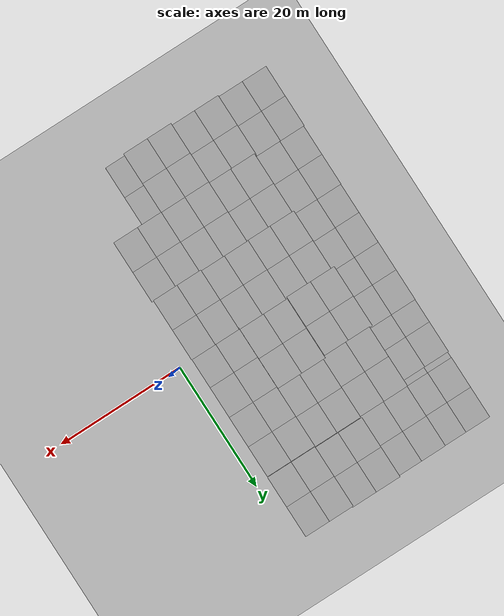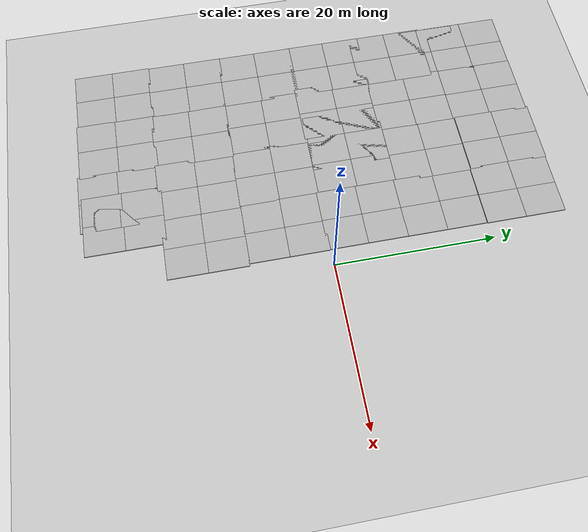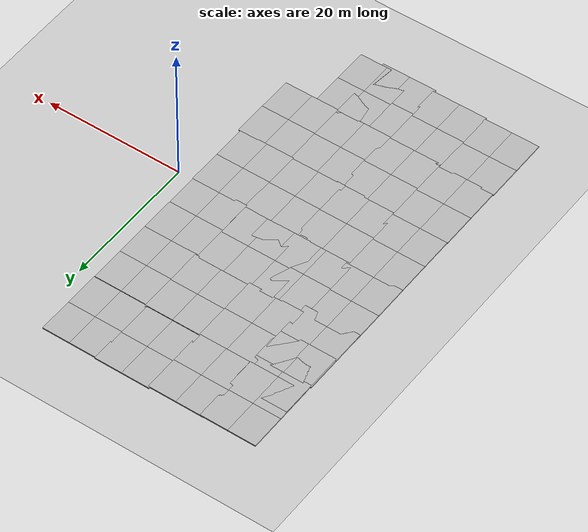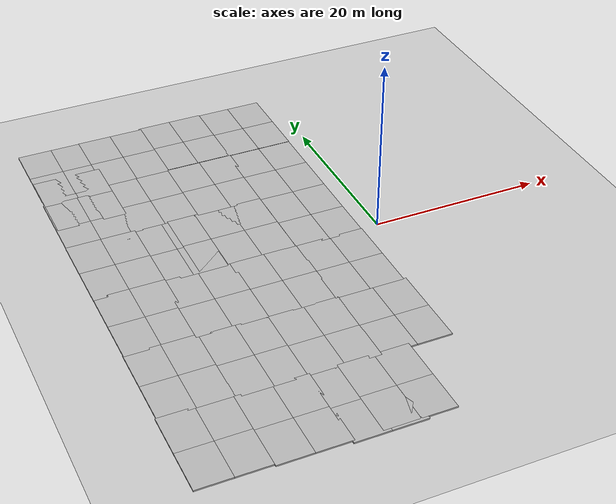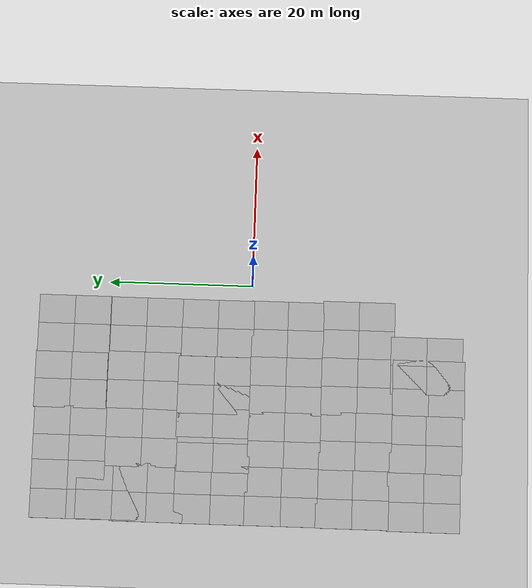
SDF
<sdf version="1.6">
 <world name="default">
  <model name="ground_plane">
   <static>1</static>
   <link name="link">
    <collision name="collision">
     <geometry><plane><normal>0 0 1</normal><size>100 100</size></plane></geometry>
     <surface><friction><ode><mu>100</mu><mu2>50</mu2></ode></friction></surface>
    </collision>
    <visual name="visual">
     <cast_shadows>0</cast_shadows>
     <geometry><plane><normal>0 0 1</normal><size>100 100</size></plane></geometry>
     <material>
      <script><uri>file://media/materials/scripts/gazebo.material</uri><name>Gazebo/Grey</name></script>
     </material>
    </visual>
   </link>
  </model>
  <model name="mud_box_2_clone">
   <static>1</static>
   <link name="link">
    <collision name="collision"><geometry><box><size>8 10 0.2</size></box></geometry></collision>
    <visual name="visual_1">
     <pose>-2 2.5 0 0 -0 0</pose>
     <cast_shadows>0</cast_shadows>
     <geometry><box><size>4 5 0.2</size></box></geometry>
     <material>
      <script>
       <uri>model://mud_box/materials/scripts</uri>
       <uri>model://mud_box/materials/textures</uri>
       <name>vrc/mud</name>
      </script>
     </material>
    </visual>
    <visual name="visual_2">
     <pose>2 2.5 0 0 -0 0</pose>
     <cast_shadows>0</cast_shadows>
     <geometry><box><size>4 5 0.2</size></box></geometry>
     <material>
      <script>
       <uri>model://mud_box/materials/scripts</uri>
       <uri>model://mud_box/materials/textures</uri>
       <name>vrc/mud</name>
      </script>
     </material>
    </visual>
    <visual name="visual_3">
     <pose>2 -2.5 0 0 -0 0</pose>
     <cast_shadows>0</cast_shadows>
     <geometry><box><size>4 5 0.2</size></box></geometry>
     <material>
      <script>
       <uri>model://mud_box/materials/scripts</uri>
       <uri>model://mud_box/materials/textures</uri>
       <name>vrc/mud</name>
      </script>
     </material>
    </visual>
    <visual name="visual_4">
     <pose>-2 -2.5 0 0 -0 0</pose>
     <cast_shadows>0</cast_shadows>
     <geometry><box><size>4 5 0.2</size></box></geometry>
     <material>
      <script>
       <uri>model://mud_box/materials/scripts</uri>
       <uri>model://mud_box/materials/textures</uri>
       <name>vrc/mud</name>
      </script>
     </material>
    </visual>
   </link>
   <pose>-5.99711 -5.05363 0 0 -0 0</pose>
  </model>
  <model name="mud_box_2_clone_0">
   <static>1</static>
   <link name="link">
    <collision name="collision"><geometry><box><size>8 10 0.2</size></box></geometry></collision>
    <visual name="visual_1">
     <pose>-2 2.5 0 0 -0 0</pose>
     <cast_shadows>0</cast_shadows>
     <geometry><box><size>4 5 0.2</size></box></geometry>
     <material>
      <script>
       <uri>model://mud_box/materials/scripts</uri>
       <uri>model://mud_box/materials/textures</uri>
       <name>vrc/mud</name>
      </script>
     </material>
    </visual>
    <visual name="visual_2">
     <pose>2 2.5 0 0 -0 0</pose>
     <cast_shadows>0</cast_shadows>
     <geometry><box><size>4 5 0.2</size></box></geometry>
     <material>
      <script>
       <uri>model://mud_box/materials/scripts</uri>
       <uri>model://mud_box/materials/textures</uri>
       <name>vrc/mud</name>
      </script>
     </material>
    </visual>
    <visual name="visual_3">
     <pose>2 -2.5 0 0 -0 0</pose>
     <cast_shadows>0</cast_shadows>
     <geometry><box><size>4 5 0.2</size></box></geometry>
     <material>
      <script>
       <uri>model://mud_box/materials/scripts</uri>
       <uri>model://mud_box/materials/textures</uri>
       <name>vrc/mud</name>
      </script>
     </material>
    </visual>
    <visual name="visual_4">
     <pose>-2 -2.5 0 0 -0 0</pose>
     <cast_shadows>0</cast_shadows>
     <geometry><box><size>4 5 0.2</size></box></geometry>
     <material>
      <script>
       <uri>model://mud_box/materials/scripts</uri>
       <uri>model://mud_box/materials/textures</uri>
       <name>vrc/mud</name>
      </script>
     </material>
    </visual>
   </link>
   <pose>-6.06019 4.66559 0 0 -0 0</pose>
  </model>
  <model name="mud_box_2_clone_1">
   <static>1</static>
   <link name="link">
    <collision name="collision"><geometry><box><size>8 10 0.2</size></box></geometry></collision>
    <visual name="visual_1">
     <pose>-2 2.5 0 0 -0 0</pose>
     <cast_shadows>0</cast_shadows>
     <geometry><box><size>4 5 0.2</size></box></geometry>
     <material>
      <script>
       <uri>model://mud_box/materials/scripts</uri>
       <uri>model://mud_box/materials/textures</uri>
       <name>vrc/mud</name>
      </script>
     </material>
    </visual>
    <visual name="visual_2">
     <pose>2 2.5 0 0 -0 0</pose>
     <cast_shadows>0</cast_shadows>
     <geometry><box><size>4 5 0.2</size></box></geometry>
     <material>
      <script>
       <uri>model://mud_box/materials/scripts</uri>
       <uri>model://mud_box/materials/textures</uri>
       <name>vrc/mud</name>
      </script>
     </material>
    </visual>
    <visual name="visual_3">
     <pose>2 -2.5 0 0 -0 0</pose>
     <cast_shadows>0</cast_shadows>
     <geometry><box><size>4 5 0.2</size></box></geometry>
     <material>
      <script>
       <uri>model://mud_box/materials/scripts</uri>
       <uri>model://mud_box/materials/textures</uri>
       <name>vrc/mud</name>
      </script>
     </material>
    </visual>
    <visual name="visual_4">
     <pose>-2 -2.5 0 0 -0 0</pose>
     <cast_shadows>0</cast_shadows>
     <geometry><box><size>4 5 0.2</size></box></geometry>
     <material>
      <script>
       <uri>model://mud_box/materials/scripts</uri>
       <uri>model://mud_box/materials/textures</uri>
       <name>vrc/mud</name>
      </script>
     </material>
    </visual>
   </link>
   <pose>-6.05112 14.6239 0 0 -0 0</pose>
  </model>
  <model name="mud_box_2_clone_2">
   <static>1</static>
   <link name="link">
    <collision name="collision"><geometry><box><size>8 10 0.2</size></box></geometry></collision>
    <visual name="visual_1">
     <pose>-2 2.5 0 0 -0 0</pose>
     <cast_shadows>0</cast_shadows>
     <geometry><box><size>4 5 0.2</size></box></geometry>
     <material>
      <script>
       <uri>model://mud_box/materials/scripts</uri>
       <uri>model://mud_box/materials/textures</uri>
       <name>vrc/mud</name>
      </script>
     </material>
    </visual>
    <visual name="visual_2">
     <pose>2 2.5 0 0 -0 0</pose>
     <cast_shadows>0</cast_shadows>
     <geometry><box><size>4 5 0.2</size></box></geometry>
     <material>
      <script>
       <uri>model://mud_box/materials/scripts</uri>
       <uri>model://mud_box/materials/textures</uri>
       <name>vrc/mud</name>
      </script>
     </material>
    </visual>
    <visual name="visual_3">
     <pose>2 -2.5 0 0 -0 0</pose>
     <cast_shadows>0</cast_shadows>
     <geometry><box><size>4 5 0.2</size></box></geometry>
     <material>
      <script>
       <uri>model://mud_box/materials/scripts</uri>
       <uri>model://mud_box/materials/textures</uri>
       <name>vrc/mud</name>
      </script>
     </material>
    </visual>
    <visual name="visual_4">
     <pose>-2 -2.5 0 0 -0 0</pose>
     <cast_shadows>0</cast_shadows>
     <geometry><box><size>4 5 0.2</size></box></geometry>
     <material>
      <script>
       <uri>model://mud_box/materials/scripts</uri>
       <uri>model://mud_box/materials/textures</uri>
       <name>vrc/mud</name>
      </script>
     </material>
    </visual>
   </link>
   <pose>-6.01342 24.6918 0 0 -0 0</pose>
  </model>
  <model name="mud_box_2_clone_7">
   <static>1</static>
   <link name="link">
    <collision name="collision"><geometry><box><size>8 10 0.2</size></box></geometry></collision>
    <visual name="visual_1">
     <pose>-2 2.5 0 0 -0 0</pose>
     <cast_shadows>0</cast_shadows>
     <geometry><box><size>4 5 0.2</size></box></geometry>
     <material>
      <script>
       <uri>model://mud_box/materials/scripts</uri>
       <uri>model://mud_box/materials/textures</uri>
       <name>vrc/mud</name>
      </script>
     </material>
    </visual>
    <visual name="visual_2">
     <pose>2 2.5 0 0 -0 0</pose>
     <cast_shadows>0</cast_shadows>
     <geometry><box><size>4 5 0.2</size></box></geometry>
     <material>
      <script>
       <uri>model://mud_box/materials/scripts</uri>
       <uri>model://mud_box/materials/textures</uri>
       <name>vrc/mud</name>
      </script>
     </material>
    </visual>
    <visual name="visual_3">
     <pose>2 -2.5 0 0 -0 0</pose>
     <cast_shadows>0</cast_shadows>
     <geometry><box><size>4 5 0.2</size></box></geometry>
     <material>
      <script>
       <uri>model://mud_box/materials/scripts</uri>
       <uri>model://mud_box/materials/textures</uri>
       <name>vrc/mud</name>
      </script>
     </material>
    </visual>
    <visual name="visual_4">
     <pose>-2 -2.5 0 0 -0 0</pose>
     <cast_shadows>0</cast_shadows>
     <geometry><box><size>4 5 0.2</size></box></geometry>
     <material>
      <script>
       <uri>model://mud_box/materials/scripts</uri>
       <uri>model://mud_box/materials/textures</uri>
       <name>vrc/mud</name>
      </script>
     </material>
    </visual>
   </link>
   <pose>-5.71358 -14.9574 0 0 -0 0</pose>
  </model>
  <model name="mud_box_2_clone_12">
   <static>1</static>
   <link name="link">
    <collision name="collision"><geometry><box><size>8 10 0.2</size></box></geometry></collision>
    <visual name="visual_1">
     <pose>-2 2.5 0 0 -0 0</pose>
     <cast_shadows>0</cast_shadows>
     <geometry><box><size>4 5 0.2</size></box></geometry>
     <material>
      <script>
       <uri>model://mud_box/materials/scripts</uri>
       <uri>model://mud_box/materials/textures</uri>
       <name>vrc/mud</name>
      </script>
     </material>
    </visual>
    <visual name="visual_2">
     <pose>2 2.5 0 0 -0 0</pose>
     <cast_shadows>0</cast_shadows>
     <geometry><box><size>4 5 0.2</size></box></geometry>
     <material>
      <script>
       <uri>model://mud_box/materials/scripts</uri>
       <uri>model://mud_box/materials/textures</uri>
       <name>vrc/mud</name>
      </script>
     </material>
    </visual>
    <visual name="visual_3">
     <pose>2 -2.5 0 0 -0 0</pose>
     <cast_shadows>0</cast_shadows>
     <geometry><box><size>4 5 0.2</size></box></geometry>
     <material>
      <script>
       <uri>model://mud_box/materials/scripts</uri>
       <uri>model://mud_box/materials/textures</uri>
       <name>vrc/mud</name>
      </script>
     </material>
    </visual>
    <visual name="visual_4">
     <pose>-2 -2.5 0 0 -0 0</pose>
     <cast_shadows>0</cast_shadows>
     <geometry><box><size>4 5 0.2</size></box></geometry>
     <material>
      <script>
       <uri>model://mud_box/materials/scripts</uri>
       <uri>model://mud_box/materials/textures</uri>
       <name>vrc/mud</name>
      </script>
     </material>
    </visual>
   </link>
   <pose>-13.6722 -14.9063 0 0 -0 0</pose>
  </model>
  <model name="mud_box_2_clone_13">
   <static>1</static>
   <link name="link">
    <collision name="collision"><geometry><box><size>8 10 0.2</size></box></geometry></collision>
    <visual name="visual_1">
     <pose>-2 2.5 0 0 -0 0</pose>
     <cast_shadows>0</cast_shadows>
     <geometry><box><size>4 5 0.2</size></box></geometry>
     <material>
      <script>
       <uri>model://mud_box/materials/scripts</uri>
       <uri>model://mud_box/materials/textures</uri>
       <name>vrc/mud</name>
      </script>
     </material>
    </visual>
    <visual name="visual_2">
     <pose>2 2.5 0 0 -0 0</pose>
     <cast_shadows>0</cast_shadows>
     <geometry><box><size>4 5 0.2</size></box></geometry>
     <material>
      <script>
       <uri>model://mud_box/materials/scripts</uri>
       <uri>model://mud_box/materials/textures</uri>
       <name>vrc/mud</name>
      </script>
     </material>
    </visual>
    <visual name="visual_3">
     <pose>2 -2.5 0 0 -0 0</pose>
     <cast_shadows>0</cast_shadows>
     <geometry><box><size>4 5 0.2</size></box></geometry>
     <material>
      <script>
       <uri>model://mud_box/materials/scripts</uri>
       <uri>model://mud_box/materials/textures</uri>
       <name>vrc/mud</name>
      </script>
     </material>
    </visual>
    <visual name="visual_4">
     <pose>-2 -2.5 0 0 -0 0</pose>
     <cast_shadows>0</cast_shadows>
     <geometry><box><size>4 5 0.2</size></box></geometry>
     <material>
      <script>
       <uri>model://mud_box/materials/scripts</uri>
       <uri>model://mud_box/materials/textures</uri>
       <name>vrc/mud</name>
      </script>
     </material>
    </visual>
   </link>
   <pose>-13.8772 -5.00859 0 0 -0 0</pose>
  </model>
  <model name="mud_box_2_clone_14">
   <static>1</static>
   <link name="link">
    <collision name="collision"><geometry><box><size>8 10 0.2</size></box></geometry></collision>
    <visual name="visual_1">
     <pose>-2 2.5 0 0 -0 0</pose>
     <cast_shadows>0</cast_shadows>
     <geometry><box><size>4 5 0.2</size></box></geometry>
     <material>
      <script>
       <uri>model://mud_box/materials/scripts</uri>
       <uri>model://mud_box/materials/textures</uri>
       <name>vrc/mud</name>
      </script>
     </material>
    </visual>
    <visual name="visual_2">
     <pose>2 2.5 0 0 -0 0</pose>
     <cast_shadows>0</cast_shadows>
     <geometry><box><size>4 5 0.2</size></box></geometry>
     <material>
      <script>
       <uri>model://mud_box/materials/scripts</uri>
       <uri>model://mud_box/materials/textures</uri>
       <name>vrc/mud</name>
      </script>
     </material>
    </visual>
    <visual name="visual_3">
     <pose>2 -2.5 0 0 -0 0</pose>
     <cast_shadows>0</cast_shadows>
     <geometry><box><size>4 5 0.2</size></box></geometry>
     <material>
      <script>
       <uri>model://mud_box/materials/scripts</uri>
       <uri>model://mud_box/materials/textures</uri>
       <name>vrc/mud</name>
      </script>
     </material>
    </visual>
    <visual name="visual_4">
     <pose>-2 -2.5 0 0 -0 0</pose>
     <cast_shadows>0</cast_shadows>
     <geometry><box><size>4 5 0.2</size></box></geometry>
     <material>
      <script>
       <uri>model://mud_box/materials/scripts</uri>
       <uri>model://mud_box/materials/textures</uri>
       <name>vrc/mud</name>
      </script>
     </material>
    </visual>
   </link>
   <pose>-14.0666 4.95043 0 0 -0 0</pose>
  </model>
  <model name="mud_box_2_clone_15">
   <static>1</static>
   <link name="link">
    <collision name="collision"><geometry><box><size>8 10 0.2</size></box></geometry></collision>
    <visual name="visual_1">
     <pose>-2 2.5 0 0 -0 0</pose>
     <cast_shadows>0</cast_shadows>
     <geometry><box><size>4 5 0.2</size></box></geometry>
     <material>
      <script>
       <uri>model://mud_box/materials/scripts</uri>
       <uri>model://mud_box/materials/textures</uri>
       <name>vrc/mud</name>
      </script>
     </material>
    </visual>
    <visual name="visual_2">
     <pose>2 2.5 0 0 -0 0</pose>
     <cast_shadows>0</cast_shadows>
     <geometry><box><size>4 5 0.2</size></box></geometry>
     <material>
      <script>
       <uri>model://mud_box/materials/scripts</uri>
       <uri>model://mud_box/materials/textures</uri>
       <name>vrc/mud</name>
      </script>
     </material>
    </visual>
    <visual name="visual_3">
     <pose>2 -2.5 0 0 -0 0</pose>
     <cast_shadows>0</cast_shadows>
     <geometry><box><size>4 5 0.2</size></box></geometry>
     <material>
      <script>
       <uri>model://mud_box/materials/scripts</uri>
       <uri>model://mud_box/materials/textures</uri>
       <name>vrc/mud</name>
      </script>
     </material>
    </visual>
    <visual name="visual_4">
     <pose>-2 -2.5 0 0 -0 0</pose>
     <cast_shadows>0</cast_shadows>
     <geometry><box><size>4 5 0.2</size></box></geometry>
     <material>
      <script>
       <uri>model://mud_box/materials/scripts</uri>
       <uri>model://mud_box/materials/textures</uri>
       <name>vrc/mud</name>
      </script>
     </material>
    </visual>
   </link>
   <pose>-13.7138 14.7165 0 0 -0 0</pose>
  </model>
  <model name="mud_box_2_clone_16">
   <static>1</static>
   <link name="link">
    <collision name="collision"><geometry><box><size>8 10 0.2</size></box></geometry></collision>
    <visual name="visual_1">
     <pose>-2 2.5 0 0 -0 0</pose>
     <cast_shadows>0</cast_shadows>
     <geometry><box><size>4 5 0.2</size></box></geometry>
     <material>
      <script>
       <uri>model://mud_box/materials/scripts</uri>
       <uri>model://mud_box/materials/textures</uri>
       <name>vrc/mud</name>
      </script>
     </material>
    </visual>
    <visual name="visual_2">
     <pose>2 2.5 0 0 -0 0</pose>
     <cast_shadows>0</cast_shadows>
     <geometry><box><size>4 5 0.2</size></box></geometry>
     <material>
      <script>
       <uri>model://mud_box/materials/scripts</uri>
       <uri>model://mud_box/materials/textures</uri>
       <name>vrc/mud</name>
      </script>
     </material>
    </visual>
    <visual name="visual_3">
     <pose>2 -2.5 0 0 -0 0</pose>
     <cast_shadows>0</cast_shadows>
     <geometry><box><size>4 5 0.2</size></box></geometry>
     <material>
      <script>
       <uri>model://mud_box/materials/scripts</uri>
       <uri>model://mud_box/materials/textures</uri>
       <name>vrc/mud</name>
      </script>
     </material>
    </visual>
    <visual name="visual_4">
     <pose>-2 -2.5 0 0 -0 0</pose>
     <cast_shadows>0</cast_shadows>
     <geometry><box><size>4 5 0.2</size></box></geometry>
     <material>
      <script>
       <uri>model://mud_box/materials/scripts</uri>
       <uri>model://mud_box/materials/textures</uri>
       <name>vrc/mud</name>
      </script>
     </material>
    </visual>
   </link>
   <pose>-13.829 24.7964 0 0 -0 0</pose>
  </model>
  <model name="mud_box_2_clone_14_clone">
   <static>1</static>
   <link name="link">
    <collision name="collision"><geometry><box><size>8 10 0.2</size></box></geometry></collision>
    <visual name="visual_1">
     <pose>-2 2.5 0 0 -0 0</pose>
     <cast_shadows>0</cast_shadows>
     <geometry><box><size>4 5 0.2</size></box></geometry>
     <material>
      <script>
       <uri>model://mud_box/materials/scripts</uri>
       <uri>model://mud_box/materials/textures</uri>
       <name>vrc/mud</name>
      </script>
     </material>
    </visual>
    <visual name="visual_2">
     <pose>2 2.5 0 0 -0 0</pose>
     <cast_shadows>0</cast_shadows>
     <geometry><box><size>4 5 0.2</size></box></geometry>
     <material>
      <script>
       <uri>model://mud_box/materials/scripts</uri>
       <uri>model://mud_box/materials/textures</uri>
       <name>vrc/mud</name>
      </script>
     </material>
    </visual>
    <visual name="visual_3">
     <pose>2 -2.5 0 0 -0 0</pose>
     <cast_shadows>0</cast_shadows>
     <geometry><box><size>4 5 0.2</size></box></geometry>
     <material>
      <script>
       <uri>model://mud_box/materials/scripts</uri>
       <uri>model://mud_box/materials/textures</uri>
       <name>vrc/mud</name>
      </script>
     </material>
    </visual>
    <visual name="visual_4">
     <pose>-2 -2.5 0 0 -0 0</pose>
     <cast_shadows>0</cast_shadows>
     <geometry><box><size>4 5 0.2</size></box></geometry>
     <material>
      <script>
       <uri>model://mud_box/materials/scripts</uri>
       <uri>model://mud_box/materials/textures</uri>
       <name>vrc/mud</name>
      </script>
     </material>
    </visual>
   </link>
   <pose>-21.5849 24.5919 0 0 -0 0</pose>
  </model>
  <model name="mud_box_2_clone_14_clone_0">
   <static>1</static>
   <link name="link">
    <collision name="collision"><geometry><box><size>8 10 0.2</size></box></geometry></collision>
    <visual name="visual_1">
     <pose>-2 2.5 0 0 -0 0</pose>
     <cast_shadows>0</cast_shadows>
     <geometry><box><size>4 5 0.2</size></box></geometry>
     <material>
      <script>
       <uri>model://mud_box/materials/scripts</uri>
       <uri>model://mud_box/materials/textures</uri>
       <name>vrc/mud</name>
      </script>
     </material>
    </visual>
    <visual name="visual_2">
     <pose>2 2.5 0 0 -0 0</pose>
     <cast_shadows>0</cast_shadows>
     <geometry><box><size>4 5 0.2</size></box></geometry>
     <material>
      <script>
       <uri>model://mud_box/materials/scripts</uri>
       <uri>model://mud_box/materials/textures</uri>
       <name>vrc/mud</name>
      </script>
     </material>
    </visual>
    <visual name="visual_3">
     <pose>2 -2.5 0 0 -0 0</pose>
     <cast_shadows>0</cast_shadows>
     <geometry><box><size>4 5 0.2</size></box></geometry>
     <material>
      <script>
       <uri>model://mud_box/materials/scripts</uri>
       <uri>model://mud_box/materials/textures</uri>
       <name>vrc/mud</name>
      </script>
     </material>
    </visual>
    <visual name="visual_4">
     <pose>-2 -2.5 0 0 -0 0</pose>
     <cast_shadows>0</cast_shadows>
     <geometry><box><size>4 5 0.2</size></box></geometry>
     <material>
      <script>
       <uri>model://mud_box/materials/scripts</uri>
       <uri>model://mud_box/materials/textures</uri>
       <name>vrc/mud</name>
      </script>
     </material>
    </visual>
   </link>
   <pose>-21.6698 14.6037 0 0 -0 0</pose>
  </model>
  <model name="mud_box_2_clone_14_clone_1">
   <static>1</static>
   <link name="link">
    <collision name="collision"><geometry><box><size>8 10 0.2</size></box></geometry></collision>
    <visual name="visual_1">
     <pose>-2 2.5 0 0 -0 0</pose>
     <cast_shadows>0</cast_shadows>
     <geometry><box><size>4 5 0.2</size></box></geometry>
     <material>
      <script>
       <uri>model://mud_box/materials/scripts</uri>
       <uri>model://mud_box/materials/textures</uri>
       <name>vrc/mud</name>
      </script>
     </material>
    </visual>
    <visual name="visual_2">
     <pose>2 2.5 0 0 -0 0</pose>
     <cast_shadows>0</cast_shadows>
     <geometry><box><size>4 5 0.2</size></box></geometry>
     <material>
      <script>
       <uri>model://mud_box/materials/scripts</uri>
       <uri>model://mud_box/materials/textures</uri>
       <name>vrc/mud</name>
      </script>
     </material>
    </visual>
    <visual name="visual_3">
     <pose>2 -2.5 0 0 -0 0</pose>
     <cast_shadows>0</cast_shadows>
     <geometry><box><size>4 5 0.2</size></box></geometry>
     <material>
      <script>
       <uri>model://mud_box/materials/scripts</uri>
       <uri>model://mud_box/materials/textures</uri>
       <name>vrc/mud</name>
      </script>
     </material>
    </visual>
    <visual name="visual_4">
     <pose>-2 -2.5 0 0 -0 0</pose>
     <cast_shadows>0</cast_shadows>
     <geometry><box><size>4 5 0.2</size></box></geometry>
     <material>
      <script>
       <uri>model://mud_box/materials/scripts</uri>
       <uri>model://mud_box/materials/textures</uri>
       <name>vrc/mud</name>
      </script>
     </material>
    </visual>
   </link>
   <pose>-22.1159 4.74193 0 0 -0 0</pose>
  </model>
  <model name="mud_box_2_clone_14_clone_2">
   <static>1</static>
   <link name="link">
    <collision name="collision"><geometry><box><size>8 10 0.2</size></box></geometry></collision>
    <visual name="visual_1">
     <pose>-2 2.5 0 0 -0 0</pose>
     <cast_shadows>0</cast_shadows>
     <geometry><box><size>4 5 0.2</size></box></geometry>
     <material>
      <script>
       <uri>model://mud_box/materials/scripts</uri>
       <uri>model://mud_box/materials/textures</uri>
       <name>vrc/mud</name>
      </script>
     </material>
    </visual>
    <visual name="visual_2">
     <pose>2 2.5 0 0 -0 0</pose>
     <cast_shadows>0</cast_shadows>
     <geometry><box><size>4 5 0.2</size></box></geometry>
     <material>
      <script>
       <uri>model://mud_box/materials/scripts</uri>
       <uri>model://mud_box/materials/textures</uri>
       <name>vrc/mud</name>
      </script>
     </material>
    </visual>
    <visual name="visual_3">
     <pose>2 -2.5 0 0 -0 0</pose>
     <cast_shadows>0</cast_shadows>
     <geometry><box><size>4 5 0.2</size></box></geometry>
     <material>
      <script>
       <uri>model://mud_box/materials/scripts</uri>
       <uri>model://mud_box/materials/textures</uri>
       <name>vrc/mud</name>
      </script>
     </material>
    </visual>
    <visual name="visual_4">
     <pose>-2 -2.5 0 0 -0 0</pose>
     <cast_shadows>0</cast_shadows>
     <geometry><box><size>4 5 0.2</size></box></geometry>
     <material>
      <script>
       <uri>model://mud_box/materials/scripts</uri>
       <uri>model://mud_box/materials/textures</uri>
       <name>vrc/mud</name>
      </script>
     </material>
    </visual>
   </link>
   <pose>-21.579 -4.96336 0 0 -0 0</pose>
  </model>
  <model name="mud_box_2_clone_14_clone_3">
   <static>1</static>
   <link name="link">
    <collision name="collision"><geometry><box><size>8 10 0.2</size></box></geometry></collision>
    <visual name="visual_1">
     <pose>-2 2.5 0 0 -0 0</pose>
     <cast_shadows>0</cast_shadows>
     <geometry><box><size>4 5 0.2</size></box></geometry>
     <material>
      <script>
       <uri>model://mud_box/materials/scripts</uri>
       <uri>model://mud_box/materials/textures</uri>
       <name>vrc/mud</name>
      </script>
     </material>
    </visual>
    <visual name="visual_2">
     <pose>2 2.5 0 0 -0 0</pose>
     <cast_shadows>0</cast_shadows>
     <geometry><box><size>4 5 0.2</size></box></geometry>
     <material>
      <script>
       <uri>model://mud_box/materials/scripts</uri>
       <uri>model://mud_box/materials/textures</uri>
       <name>vrc/mud</name>
      </script>
     </material>
    </visual>
    <visual name="visual_3">
     <pose>2 -2.5 0 0 -0 0</pose>
     <cast_shadows>0</cast_shadows>
     <geometry><box><size>4 5 0.2</size></box></geometry>
     <material>
      <script>
       <uri>model://mud_box/materials/scripts</uri>
       <uri>model://mud_box/materials/textures</uri>
       <name>vrc/mud</name>
      </script>
     </material>
    </visual>
    <visual name="visual_4">
     <pose>-2 -2.5 0 0 -0 0</pose>
     <cast_shadows>0</cast_shadows>
     <geometry><box><size>4 5 0.2</size></box></geometry>
     <material>
      <script>
       <uri>model://mud_box/materials/scripts</uri>
       <uri>model://mud_box/materials/textures</uri>
       <name>vrc/mud</name>
      </script>
     </material>
    </visual>
   </link>
   <pose>-21.2777 -14.7665 0 0 -0 0</pose>
  </model>
  <model name="mud_box_2_clone_14_clone_9">
   <static>1</static>
   <link name="link">
    <collision name="collision"><geometry><box><size>8 10 0.2</size></box></geometry></collision>
    <visual name="visual_1">
     <pose>-2 2.5 0 0 -0 0</pose>
     <cast_shadows>0</cast_shadows>
     <geometry><box><size>4 5 0.2</size></box></geometry>
     <material>
      <script>
       <uri>model://mud_box/materials/scripts</uri>
       <uri>model://mud_box/materials/textures</uri>
       <name>vrc/mud</name>
      </script>
     </material>
    </visual>
    <visual name="visual_2">
     <pose>2 2.5 0 0 -0 0</pose>
     <cast_shadows>0</cast_shadows>
     <geometry><box><size>4 5 0.2</size></box></geometry>
     <material>
      <script>
       <uri>model://mud_box/materials/scripts</uri>
       <uri>model://mud_box/materials/textures</uri>
       <name>vrc/mud</name>
      </script>
     </material>
    </visual>
    <visual name="visual_3">
     <pose>2 -2.5 0 0 -0 0</pose>
     <cast_shadows>0</cast_shadows>
     <geometry><box><size>4 5 0.2</size></box></geometry>
     <material>
      <script>
       <uri>model://mud_box/materials/scripts</uri>
       <uri>model://mud_box/materials/textures</uri>
       <name>vrc/mud</name>
      </script>
     </material>
    </visual>
    <visual name="visual_4">
     <pose>-2 -2.5 0 0 -0 0</pose>
     <cast_shadows>0</cast_shadows>
     <geometry><box><size>4 5 0.2</size></box></geometry>
     <material>
      <script>
       <uri>model://mud_box/materials/scripts</uri>
       <uri>model://mud_box/materials/textures</uri>
       <name>vrc/mud</name>
      </script>
     </material>
    </visual>
   </link>
   <pose>-13.6866 -24.7679 0 0 -0 0</pose>
  </model>
  <model name="mud_box_2_clone_14_clone_10">
   <static>1</static>
   <link name="link">
    <collision name="collision"><geometry><box><size>8 10 0.2</size></box></geometry></collision>
    <visual name="visual_1">
     <pose>-2 2.5 0 0 -0 0</pose>
     <cast_shadows>0</cast_shadows>
     <geometry><box><size>4 5 0.2</size></box></geometry>
     <material>
      <script>
       <uri>model://mud_box/materials/scripts</uri>
       <uri>model://mud_box/materials/textures</uri>
       <name>vrc/mud</name>
      </script>
     </material>
    </visual>
    <visual name="visual_2">
     <pose>2 2.5 0 0 -0 0</pose>
     <cast_shadows>0</cast_shadows>
     <geometry><box><size>4 5 0.2</size></box></geometry>
     <material>
      <script>
       <uri>model://mud_box/materials/scripts</uri>
       <uri>model://mud_box/materials/textures</uri>
       <name>vrc/mud</name>
      </script>
     </material>
    </visual>
    <visual name="visual_3">
     <pose>2 -2.5 0 0 -0 0</pose>
     <cast_shadows>0</cast_shadows>
     <geometry><box><size>4 5 0.2</size></box></geometry>
     <material>
      <script>
       <uri>model://mud_box/materials/scripts</uri>
       <uri>model://mud_box/materials/textures</uri>
       <name>vrc/mud</name>
      </script>
     </material>
    </visual>
    <visual name="visual_4">
     <pose>-2 -2.5 0 0 -0 0</pose>
     <cast_shadows>0</cast_shadows>
     <geometry><box><size>4 5 0.2</size></box></geometry>
     <material>
      <script>
       <uri>model://mud_box/materials/scripts</uri>
       <uri>model://mud_box/materials/textures</uri>
       <name>vrc/mud</name>
      </script>
     </material>
    </visual>
   </link>
   <pose>-21.4317 -24.4734 0 0 -0 0</pose>
  </model>
  <model name="mud_box_2_clone_14_clone_7_clone">
   <static>1</static>
   <link name="link">
    <collision name="collision"><geometry><box><size>8 10 0.2</size></box></geometry></collision>
    <visual name="visual_1">
     <pose>-2 2.5 0 0 -0 0</pose>
     <cast_shadows>0</cast_shadows>
     <geometry><box><size>4 5 0.2</size></box></geometry>
     <material>
      <script>
       <uri>model://mud_box/materials/scripts</uri>
       <uri>model://mud_box/materials/textures</uri>
       <name>vrc/mud</name>
      </script>
     </material>
    </visual>
    <visual name="visual_2">
     <pose>2 2.5 0 0 -0 0</pose>
     <cast_shadows>0</cast_shadows>
     <geometry><box><size>4 5 0.2</size></box></geometry>
     <material>
      <script>
       <uri>model://mud_box/materials/scripts</uri>
       <uri>model://mud_box/materials/textures</uri>
       <name>vrc/mud</name>
      </script>
     </material>
    </visual>
    <visual name="visual_3">
     <pose>2 -2.5 0 0 -0 0</pose>
     <cast_shadows>0</cast_shadows>
     <geometry><box><size>4 5 0.2</size></box></geometry>
     <material>
      <script>
       <uri>model://mud_box/materials/scripts</uri>
       <uri>model://mud_box/materials/textures</uri>
       <name>vrc/mud</name>
      </script>
     </material>
    </visual>
    <visual name="visual_4">
     <pose>-2 -2.5 0 0 -0 0</pose>
     <cast_shadows>0</cast_shadows>
     <geometry><box><size>4 5 0.2</size></box></geometry>
     <material>
      <script>
       <uri>model://mud_box/materials/scripts</uri>
       <uri>model://mud_box/materials/textures</uri>
       <name>vrc/mud</name>
      </script>
     </material>
    </visual>
   </link>
   <pose>-29.354 -24.2732 0 0 -0 0</pose>
  </model>
  <model name="mud_box_2_clone_14_clone_7_clone_0">
   <static>1</static>
   <link name="link">
    <collision name="collision"><geometry><box><size>8 10 0.2</size></box></geometry></collision>
    <visual name="visual_1">
     <pose>-2 2.5 0 0 -0 0</pose>
     <cast_shadows>0</cast_shadows>
     <geometry><box><size>4 5 0.2</size></box></geometry>
     <material>
      <script>
       <uri>model://mud_box/materials/scripts</uri>
       <uri>model://mud_box/materials/textures</uri>
       <name>vrc/mud</name>
      </script>
     </material>
    </visual>
    <visual name="visual_2">
     <pose>2 2.5 0 0 -0 0</pose>
     <cast_shadows>0</cast_shadows>
     <geometry><box><size>4 5 0.2</size></box></geometry>
     <material>
      <script>
       <uri>model://mud_box/materials/scripts</uri>
       <uri>model://mud_box/materials/textures</uri>
       <name>vrc/mud</name>
      </script>
     </material>
    </visual>
    <visual name="visual_3">
     <pose>2 -2.5 0 0 -0 0</pose>
     <cast_shadows>0</cast_shadows>
     <geometry><box><size>4 5 0.2</size></box></geometry>
     <material>
      <script>
       <uri>model://mud_box/materials/scripts</uri>
       <uri>model://mud_box/materials/textures</uri>
       <name>vrc/mud</name>
      </script>
     </material>
    </visual>
    <visual name="visual_4">
     <pose>-2 -2.5 0 0 -0 0</pose>
     <cast_shadows>0</cast_shadows>
     <geometry><box><size>4 5 0.2</size></box></geometry>
     <material>
      <script>
       <uri>model://mud_box/materials/scripts</uri>
       <uri>model://mud_box/materials/textures</uri>
       <name>vrc/mud</name>
      </script>
     </material>
    </visual>
   </link>
   <pose>-29.2423 -14.5134 0 0 -0 0</pose>
  </model>
  <model name="mud_box_2_clone_14_clone_7_clone_1">
   <static>1</static>
   <link name="link">
    <collision name="collision"><geometry><box><size>8 10 0.2</size></box></geometry></collision>
    <visual name="visual_1">
     <pose>-2 2.5 0 0 -0 0</pose>
     <cast_shadows>0</cast_shadows>
     <geometry><box><size>4 5 0.2</size></box></geometry>
     <material>
      <script>
       <uri>model://mud_box/materials/scripts</uri>
       <uri>model://mud_box/materials/textures</uri>
       <name>vrc/mud</name>
      </script>
     </material>
    </visual>
    <visual name="visual_2">
     <pose>2 2.5 0 0 -0 0</pose>
     <cast_shadows>0</cast_shadows>
     <geometry><box><size>4 5 0.2</size></box></geometry>
     <material>
      <script>
       <uri>model://mud_box/materials/scripts</uri>
       <uri>model://mud_box/materials/textures</uri>
       <name>vrc/mud</name>
      </script>
     </material>
    </visual>
    <visual name="visual_3">
     <pose>2 -2.5 0 0 -0 0</pose>
     <cast_shadows>0</cast_shadows>
     <geometry><box><size>4 5 0.2</size></box></geometry>
     <material>
      <script>
       <uri>model://mud_box/materials/scripts</uri>
       <uri>model://mud_box/materials/textures</uri>
       <name>vrc/mud</name>
      </script>
     </material>
    </visual>
    <visual name="visual_4">
     <pose>-2 -2.5 0 0 -0 0</pose>
     <cast_shadows>0</cast_shadows>
     <geometry><box><size>4 5 0.2</size></box></geometry>
     <material>
      <script>
       <uri>model://mud_box/materials/scripts</uri>
       <uri>model://mud_box/materials/textures</uri>
       <name>vrc/mud</name>
      </script>
     </material>
    </visual>
   </link>
   <pose>-29.1942 -4.76411 0 0 -0 0</pose>
  </model>
  <model name="mud_box_2_clone_14_clone_7_clone_2">
   <static>1</static>
   <link name="link">
    <collision name="collision"><geometry><box><size>8 10 0.2</size></box></geometry></collision>
    <visual name="visual_1">
     <pose>-2 2.5 0 0 -0 0</pose>
     <cast_shadows>0</cast_shadows>
     <geometry><box><size>4 5 0.2</size></box></geometry>
     <material>
      <script>
       <uri>model://mud_box/materials/scripts</uri>
       <uri>model://mud_box/materials/textures</uri>
       <name>vrc/mud</name>
      </script>
     </material>
    </visual>
    <visual name="visual_2">
     <pose>2 2.5 0 0 -0 0</pose>
     <cast_shadows>0</cast_shadows>
     <geometry><box><size>4 5 0.2</size></box></geometry>
     <material>
      <script>
       <uri>model://mud_box/materials/scripts</uri>
       <uri>model://mud_box/materials/textures</uri>
       <name>vrc/mud</name>
      </script>
     </material>
    </visual>
    <visual name="visual_3">
     <pose>2 -2.5 0 0 -0 0</pose>
     <cast_shadows>0</cast_shadows>
     <geometry><box><size>4 5 0.2</size></box></geometry>
     <material>
      <script>
       <uri>model://mud_box/materials/scripts</uri>
       <uri>model://mud_box/materials/textures</uri>
       <name>vrc/mud</name>
      </script>
     </material>
    </visual>
    <visual name="visual_4">
     <pose>-2 -2.5 0 0 -0 0</pose>
     <cast_shadows>0</cast_shadows>
     <geometry><box><size>4 5 0.2</size></box></geometry>
     <material>
      <script>
       <uri>model://mud_box/materials/scripts</uri>
       <uri>model://mud_box/materials/textures</uri>
       <name>vrc/mud</name>
      </script>
     </material>
    </visual>
   </link>
   <pose>-29.2058 4.87964 0 0 -0 0</pose>
  </model>
  <model name="mud_box_2_clone_14_clone_7_clone_3">
   <static>1</static>
   <link name="link">
    <collision name="collision"><geometry><box><size>8 10 0.2</size></box></geometry></collision>
    <visual name="visual_1">
     <pose>-2 2.5 0 0 -0 0</pose>
     <cast_shadows>0</cast_shadows>
     <geometry><box><size>4 5 0.2</size></box></geometry>
     <material>
      <script>
       <uri>model://mud_box/materials/scripts</uri>
       <uri>model://mud_box/materials/textures</uri>
       <name>vrc/mud</name>
      </script>
     </material>
    </visual>
    <visual name="visual_2">
     <pose>2 2.5 0 0 -0 0</pose>
     <cast_shadows>0</cast_shadows>
     <geometry><box><size>4 5 0.2</size></box></geometry>
     <material>
      <script>
       <uri>model://mud_box/materials/scripts</uri>
       <uri>model://mud_box/materials/textures</uri>
       <name>vrc/mud</name>
      </script>
     </material>
    </visual>
    <visual name="visual_3">
     <pose>2 -2.5 0 0 -0 0</pose>
     <cast_shadows>0</cast_shadows>
     <geometry><box><size>4 5 0.2</size></box></geometry>
     <material>
      <script>
       <uri>model://mud_box/materials/scripts</uri>
       <uri>model://mud_box/materials/textures</uri>
       <name>vrc/mud</name>
      </script>
     </material>
    </visual>
    <visual name="visual_4">
     <pose>-2 -2.5 0 0 -0 0</pose>
     <cast_shadows>0</cast_shadows>
     <geometry><box><size>4 5 0.2</size></box></geometry>
     <material>
      <script>
       <uri>model://mud_box/materials/scripts</uri>
       <uri>model://mud_box/materials/textures</uri>
       <name>vrc/mud</name>
      </script>
     </material>
    </visual>
   </link>
   <pose>-29.1751 13.6204 0 0 -0 0</pose>
  </model>
  <model name="mud_box_2_clone_14_clone_7_clone_4">
   <static>1</static>
   <link name="link">
    <collision name="collision"><geometry><box><size>8 10 0.2</size></box></geometry></collision>
    <visual name="visual_1">
     <pose>-2 2.5 0 0 -0 0</pose>
     <cast_shadows>0</cast_shadows>
     <geometry><box><size>4 5 0.2</size></box></geometry>
     <material>
      <script>
       <uri>model://mud_box/materials/scripts</uri>
       <uri>model://mud_box/materials/textures</uri>
       <name>vrc/mud</name>
      </script>
     </material>
    </visual>
    <visual name="visual_2">
     <pose>2 2.5 0 0 -0 0</pose>
     <cast_shadows>0</cast_shadows>
     <geometry><box><size>4 5 0.2</size></box></geometry>
     <material>
      <script>
       <uri>model://mud_box/materials/scripts</uri>
       <uri>model://mud_box/materials/textures</uri>
       <name>vrc/mud</name>
      </script>
     </material>
    </visual>
    <visual name="visual_3">
     <pose>2 -2.5 0 0 -0 0</pose>
     <cast_shadows>0</cast_shadows>
     <geometry><box><size>4 5 0.2</size></box></geometry>
     <material>
      <script>
       <uri>model://mud_box/materials/scripts</uri>
       <uri>model://mud_box/materials/textures</uri>
       <name>vrc/mud</name>
      </script>
     </material>
    </visual>
    <visual name="visual_4">
     <pose>-2 -2.5 0 0 -0 0</pose>
     <cast_shadows>0</cast_shadows>
     <geometry><box><size>4 5 0.2</size></box></geometry>
     <material>
      <script>
       <uri>model://mud_box/materials/scripts</uri>
       <uri>model://mud_box/materials/textures</uri>
       <name>vrc/mud</name>
      </script>
     </material>
    </visual>
   </link>
   <pose>-29.0679 24.5504 0 0 -0 0</pose>
  </model>
  <model name="mud_box_2_clone_14_clone_7_clone_5">
   <static>1</static>
   <link name="link">
    <collision name="collision"><geometry><box><size>8 10 0.2</size></box></geometry></collision>
    <visual name="visual_1">
     <pose>-2 2.5 0 0 -0 0</pose>
     <cast_shadows>0</cast_shadows>
     <geometry><box><size>4 5 0.2</size></box></geometry>
     <material>
      <script>
       <uri>model://mud_box/materials/scripts</uri>
       <uri>model://mud_box/materials/textures</uri>
       <name>vrc/mud</name>
      </script>
     </material>
    </visual>
    <visual name="visual_2">
     <pose>2 2.5 0 0 -0 0</pose>
     <cast_shadows>0</cast_shadows>
     <geometry><box><size>4 5 0.2</size></box></geometry>
     <material>
      <script>
       <uri>model://mud_box/materials/scripts</uri>
       <uri>model://mud_box/materials/textures</uri>
       <name>vrc/mud</name>
      </script>
     </material>
    </visual>
    <visual name="visual_3">
     <pose>2 -2.5 0 0 -0 0</pose>
     <cast_shadows>0</cast_shadows>
     <geometry><box><size>4 5 0.2</size></box></geometry>
     <material>
      <script>
       <uri>model://mud_box/materials/scripts</uri>
       <uri>model://mud_box/materials/textures</uri>
       <name>vrc/mud</name>
      </script>
     </material>
    </visual>
    <visual name="visual_4">
     <pose>-2 -2.5 0 0 -0 0</pose>
     <cast_shadows>0</cast_shadows>
     <geometry><box><size>4 5 0.2</size></box></geometry>
     <material>
      <script>
       <uri>model://mud_box/materials/scripts</uri>
       <uri>model://mud_box/materials/textures</uri>
       <name>vrc/mud</name>
      </script>
     </material>
    </visual>
   </link>
   <pose>-29.0314 18.3333 0 0 -0 0</pose>
  </model>
  <model name="mud_box_2_clone_14_clone_7_clone_7">
   <static>1</static>
   <link name="link">
    <collision name="collision"><geometry><box><size>8 10 0.2</size></box></geometry></collision>
    <visual name="visual_1">
     <pose>-2 2.5 0 0 -0 0</pose>
     <cast_shadows>0</cast_shadows>
     <geometry><box><size>4 5 0.2</size></box></geometry>
     <material>
      <script>
       <uri>model://mud_box/materials/scripts</uri>
       <uri>model://mud_box/materials/textures</uri>
       <name>vrc/mud</name>
      </script>
     </material>
    </visual>
    <visual name="visual_2">
     <pose>2 2.5 0 0 -0 0</pose>
     <cast_shadows>0</cast_shadows>
     <geometry><box><size>4 5 0.2</size></box></geometry>
     <material>
      <script>
       <uri>model://mud_box/materials/scripts</uri>
       <uri>model://mud_box/materials/textures</uri>
       <name>vrc/mud</name>
      </script>
     </material>
    </visual>
    <visual name="visual_3">
     <pose>2 -2.5 0 0 -0 0</pose>
     <cast_shadows>0</cast_shadows>
     <geometry><box><size>4 5 0.2</size></box></geometry>
     <material>
      <script>
       <uri>model://mud_box/materials/scripts</uri>
       <uri>model://mud_box/materials/textures</uri>
       <name>vrc/mud</name>
      </script>
     </material>
    </visual>
    <visual name="visual_4">
     <pose>-2 -2.5 0 0 -0 0</pose>
     <cast_shadows>0</cast_shadows>
     <geometry><box><size>4 5 0.2</size></box></geometry>
     <material>
      <script>
       <uri>model://mud_box/materials/scripts</uri>
       <uri>model://mud_box/materials/textures</uri>
       <name>vrc/mud</name>
      </script>
     </material>
    </visual>
   </link>
   <pose>-10.4648 -24.4671 0 0 -0 0</pose>
  </model>
  <model name="mud_box_2_clone_14_clone_7_clone_8">
   <static>1</static>
   <link name="link">
    <collision name="collision"><geometry><box><size>8 10 0.2</size></box></geometry></collision>
    <visual name="visual_1">
     <pose>-2 2.5 0 0 -0 0</pose>
     <cast_shadows>0</cast_shadows>
     <geometry><box><size>4 5 0.2</size></box></geometry>
     <material>
      <script>
       <uri>model://mud_box/materials/scripts</uri>
       <uri>model://mud_box/materials/textures</uri>
       <name>vrc/mud</name>
      </script>
     </material>
    </visual>
    <visual name="visual_2">
     <pose>2 2.5 0 0 -0 0</pose>
     <cast_shadows>0</cast_shadows>
     <geometry><box><size>4 5 0.2</size></box></geometry>
     <material>
      <script>
       <uri>model://mud_box/materials/scripts</uri>
       <uri>model://mud_box/materials/textures</uri>
       <name>vrc/mud</name>
      </script>
     </material>
    </visual>
    <visual name="visual_3">
     <pose>2 -2.5 0 0 -0 0</pose>
     <cast_shadows>0</cast_shadows>
     <geometry><box><size>4 5 0.2</size></box></geometry>
     <material>
      <script>
       <uri>model://mud_box/materials/scripts</uri>
       <uri>model://mud_box/materials/textures</uri>
       <name>vrc/mud</name>
      </script>
     </material>
    </visual>
    <visual name="visual_4">
     <pose>-2 -2.5 0 0 -0 0</pose>
     <cast_shadows>0</cast_shadows>
     <geometry><box><size>4 5 0.2</size></box></geometry>
     <material>
      <script>
       <uri>model://mud_box/materials/scripts</uri>
       <uri>model://mud_box/materials/textures</uri>
       <name>vrc/mud</name>
      </script>
     </material>
    </visual>
   </link>
   <pose>-17.3522 4.95314 0 0 -0 0</pose>
  </model>
 </world>
</sdf>
